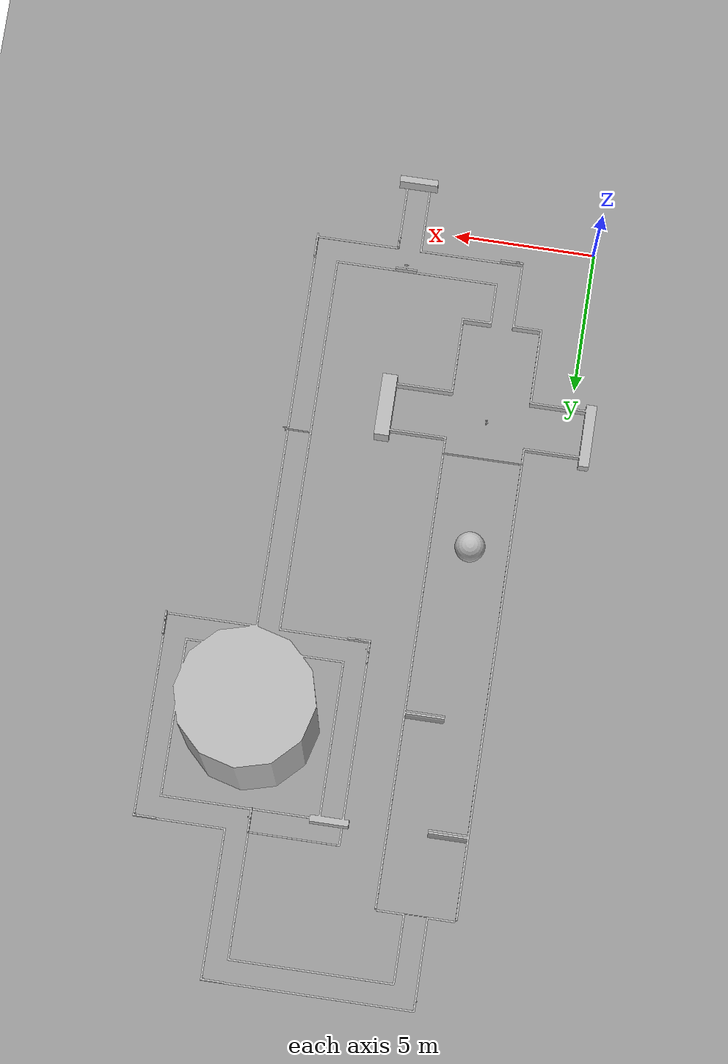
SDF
<sdf version="1.6">
 <world name="default">
  <scene><ambient>0.4 0.4 0.4 1</ambient><background>0.7 0.7 0.7 1</background><shadows>1</shadows></scene>
  <physics type="ode">
   <real_time_update_rate>1000.0</real_time_update_rate>
   <max_step_size>0.001</max_step_size>
   <real_time_factor>1.3</real_time_factor>
   <ode>
    <solver>
     <type>quick</type>
     <iters>150</iters>
     <precon_iters>0</precon_iters>
     <sor>1.400000</sor>
     <use_dynamic_moi_rescaling>1</use_dynamic_moi_rescaling>
    </solver>
    <constraints>
     <cfm>0.00001</cfm>
     <erp>0.2</erp>
     <contact_max_correcting_vel>2000.000000</contact_max_correcting_vel>
     <contact_surface_layer>0.01000</contact_surface_layer>
    </constraints>
   </ode>
  </physics>
  <model name="ground_plane_0">
   <static>1</static>
   <link name="link">
    <collision name="collision">
     <geometry><plane><normal>0 0 1</normal><size>100 100</size></plane></geometry>
     <surface><friction><ode><mu>100</mu><mu2>50</mu2></ode></friction></surface>
    </collision>
    <visual name="visual">
     <cast_shadows>0</cast_shadows>
     <geometry><plane><normal>0 0 1</normal><size>100 100</size></plane></geometry>
     <material>
      <script><uri>file://media/materials/scripts/gazebo.material</uri><name>Gazebo/Grey</name></script>
     </material>
    </visual>
    <velocity_decay><linear>0</linear><angular>0</angular></velocity_decay>
   </link>
   <pose>0.497681 0 0 0 -0 0</pose>
  </model>
  <gravity>0 0 -9.8</gravity>
  <magnetic_field>6e-06 2.3e-05 -4.2e-05</magnetic_field>
  <atmosphere type="adiabatic"/>
  <spherical_coordinates>
   <surface_model>EARTH_WGS84</surface_model>
   <latitude_deg>0</latitude_deg>
   <longitude_deg>0</longitude_deg>
   <elevation>0</elevation>
   <heading_deg>0</heading_deg>
  </spherical_coordinates>
  <light name="user_point_light_2" type="point">
   <pose>15.1491 17.0492 1 0 -0 0</pose>
   <diffuse>0.5 0.5 0.5 1</diffuse>
   <specular>0.1 0.1 0.1 1</specular>
   <attenuation>
    <range>3</range>
    <constant>0.5</constant>
    <linear>0.01</linear>
    <quadratic>0.001</quadratic>
   </attenuation>
   <cast_shadows>0</cast_shadows>
   <direction>0 0 -1</direction>
  </light>
  <light name="user_point_light_4" type="point">
   <pose>7.48599 24.8969 1 0 -0 0</pose>
   <diffuse>0.5 0.5 0.5 1</diffuse>
   <specular>0.1 0.1 0.1 1</specular>
   <attenuation>
    <range>3</range>
    <constant>0.5</constant>
    <linear>0.01</linear>
    <quadratic>0.001</quadratic>
   </attenuation>
   <cast_shadows>0</cast_shadows>
   <direction>0 0 -1</direction>
  </light>
  <light name="user_point_light_3" type="point">
   <pose>14.8528 20.5564 1 0 -0 0</pose>
   <diffuse>0.5 0.5 0.5 1</diffuse>
   <specular>0.1 0.1 0.1 1</specular>
   <attenuation>
    <range>3</range>
    <constant>0.5</constant>
    <linear>0.01</linear>
    <quadratic>0.001</quadratic>
   </attenuation>
   <cast_shadows>0</cast_shadows>
   <direction>0 0 -1</direction>
  </light>
  <light name="user_point_light_6" type="point">
   <pose>4.64665 26.2484 1 0 -0 0</pose>
   <diffuse>0.5 0.5 0.5 1</diffuse>
   <specular>0.1 0.1 0.1 1</specular>
   <attenuation>
    <range>3</range>
    <constant>0.5</constant>
    <linear>0.01</linear>
    <quadratic>0.001</quadratic>
   </attenuation>
   <cast_shadows>0</cast_shadows>
   <direction>0 0 -1</direction>
  </light>
  <light name="user_point_light_0" type="point">
   <pose>9.58382 5.71321 1 0 -0 0</pose>
   <diffuse>0.5 0.5 0.5 1</diffuse>
   <specular>0.1 0.1 0.1 1</specular>
   <attenuation>
    <range>3</range>
    <constant>0.5</constant>
    <linear>0.01</linear>
    <quadratic>0.001</quadratic>
   </attenuation>
   <cast_shadows>0</cast_shadows>
   <direction>0 0 -1</direction>
  </light>
  <light name="user_point_light_5" type="point">
   <pose>4.46796 1.66136 1 0 -0 0</pose>
   <diffuse>0.5 0.5 0.5 1</diffuse>
   <specular>0.1 0.1 0.1 1</specular>
   <attenuation>
    <range>3</range>
    <constant>0.5</constant>
    <linear>0.01</linear>
    <quadratic>0.001</quadratic>
   </attenuation>
   <cast_shadows>0</cast_shadows>
   <direction>0 0 -1</direction>
  </light>
  <light name="user_point_light_7" type="point">
   <pose>9.668 1.65075 1 0 -0 0</pose>
   <diffuse>0.5 0.5 0.5 1</diffuse>
   <specular>0.1 0.1 0.1 1</specular>
   <attenuation>
    <range>3</range>
    <constant>0.5</constant>
    <linear>0.01</linear>
    <quadratic>0.001</quadratic>
   </attenuation>
   <cast_shadows>0</cast_shadows>
   <direction>0 0 -1</direction>
  </light>
  <light name="user_point_light_9" type="point">
   <pose>-2.13609 16.5166 1 0 -0 0</pose>
   <diffuse>0.5 0.5 0.5 1</diffuse>
   <specular>0.1 0.1 0.1 1</specular>
   <attenuation>
    <range>10</range>
    <constant>0.3</constant>
    <linear>0.01</linear>
    <quadratic>0.001</quadratic>
   </attenuation>
   <cast_shadows>0</cast_shadows>
   <direction>0 0 -1</direction>
  </light>
  <light name="user_point_light_10" type="point">
   <pose>1.51585 23.1852 1 0 -0 0</pose>
   <diffuse>0.5 0.5 0.5 1</diffuse>
   <specular>0.1 0.1 0.1 1</specular>
   <attenuation>
    <range>10</range>
    <constant>0.2</constant>
    <linear>0.01</linear>
    <quadratic>0.001</quadratic>
   </attenuation>
   <cast_shadows>0</cast_shadows>
   <direction>0 0 -1</direction>
  </light>
  <light name="user_point_light_1" type="point">
   <pose>2.97822 13.416 1 0 -0 0</pose>
   <diffuse>0.5 0.5 0.5 1</diffuse>
   <specular>0.1 0.1 0.1 1</specular>
   <attenuation>
    <range>20</range>
    <constant>0.5</constant>
    <linear>0.01</linear>
    <quadratic>0.001</quadratic>
   </attenuation>
   <cast_shadows>0</cast_shadows>
   <direction>0 0 -1</direction>
  </light>
  <light name="user_point_light_2_clone" type="point">
   <pose>4.97086 19.6119 1 0 -0 0</pose>
   <diffuse>0.5 0.5 0.5 1</diffuse>
   <specular>0.1 0.1 0.1 1</specular>
   <direction>0 0 -1</direction>
   <attenuation>
    <range>3</range>
    <constant>0.5</constant>
    <linear>0.01</linear>
    <quadratic>0.001</quadratic>
   </attenuation>
  </light>
  <light name="user_point_light_2_clone_0" type="point">
   <pose>7.35263 17.0561 1 0 -0 0</pose>
   <diffuse>0.5 0.5 0.5 1</diffuse>
   <specular>0.1 0.1 0.1 1</specular>
   <direction>0 0 -1</direction>
   <attenuation>
    <range>3</range>
    <constant>0.5</constant>
    <linear>0.01</linear>
    <quadratic>0.001</quadratic>
   </attenuation>
  </light>
  <light name="user_point_light_8" type="point">
   <pose>6.52726 -1.63697 1 0 -0 0</pose>
   <diffuse>0.5 0.5 0.5 1</diffuse>
   <specular>0.1 0.1 0.1 1</specular>
   <attenuation>
    <range>20</range>
    <constant>0.5</constant>
    <linear>0.01</linear>
    <quadratic>0.001</quadratic>
   </attenuation>
   <cast_shadows>0</cast_shadows>
   <direction>0 0 -1</direction>
  </light>
  <model name="all_levels_latest">
   <static>1</static>
   <link name="link">
    <collision name="collision">
     <geometry><mesh><uri>model://all_levels_latest/meshes/map.obj</uri></mesh></geometry>
    </collision>
    <visual name="visual">
     <geometry><mesh><uri>model://all_levels_latest/meshes/map.obj</uri></mesh></geometry>
    </visual>
   </link>
   <pose>9.49116 12.6211 0 0 -0 0</pose>
  </model>
 </world>
</sdf>
